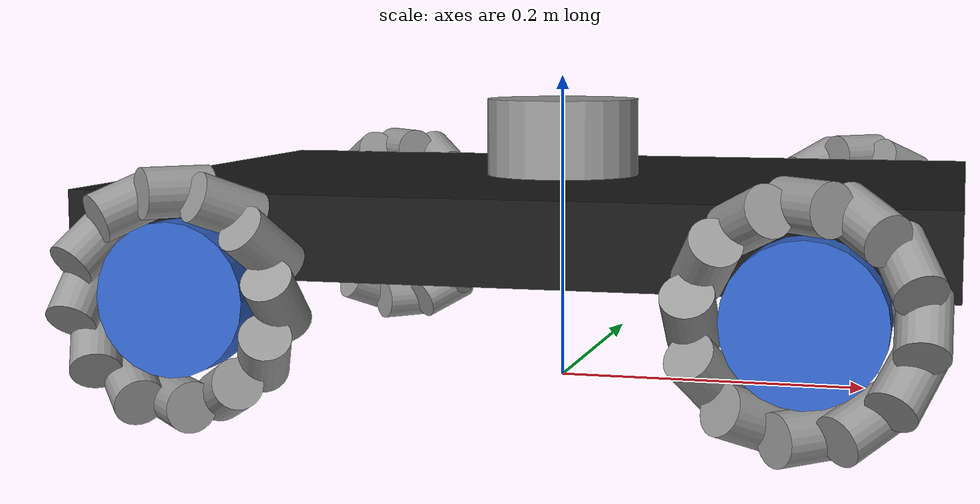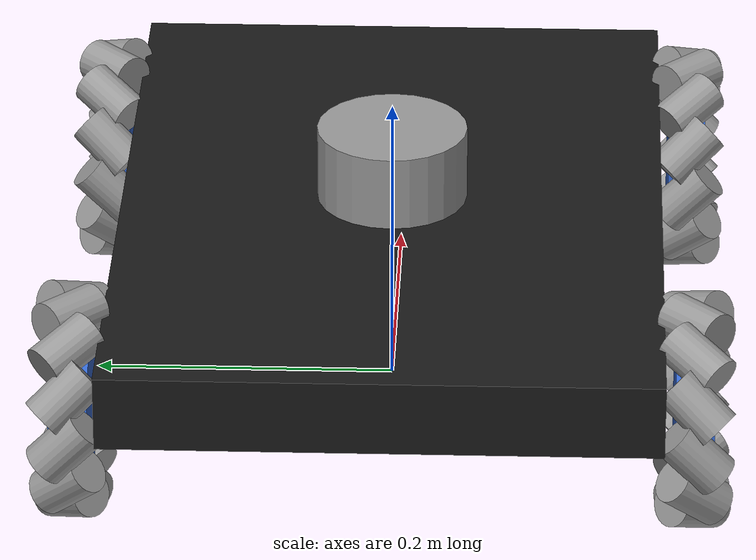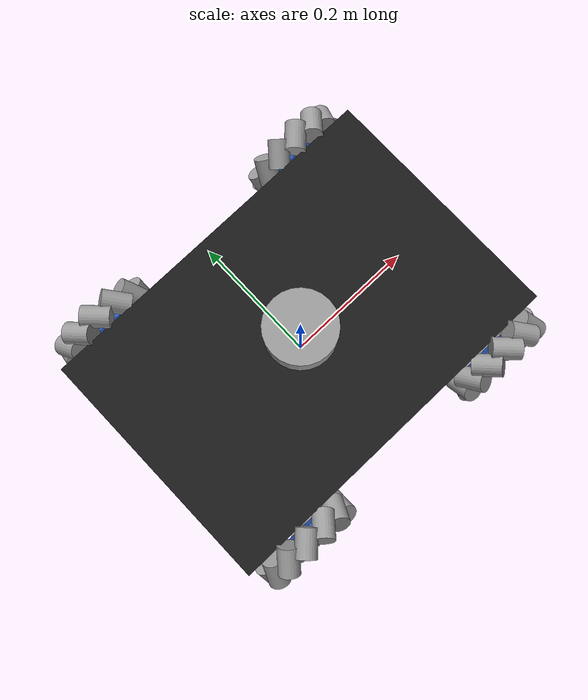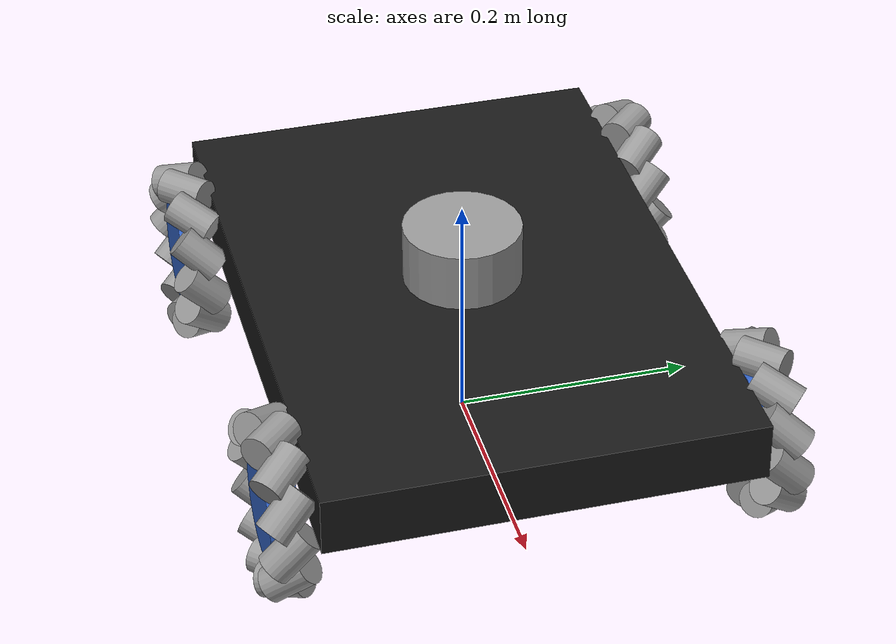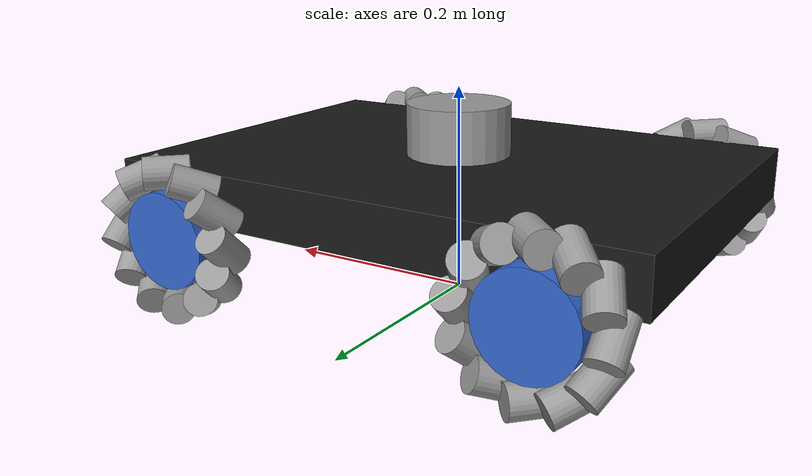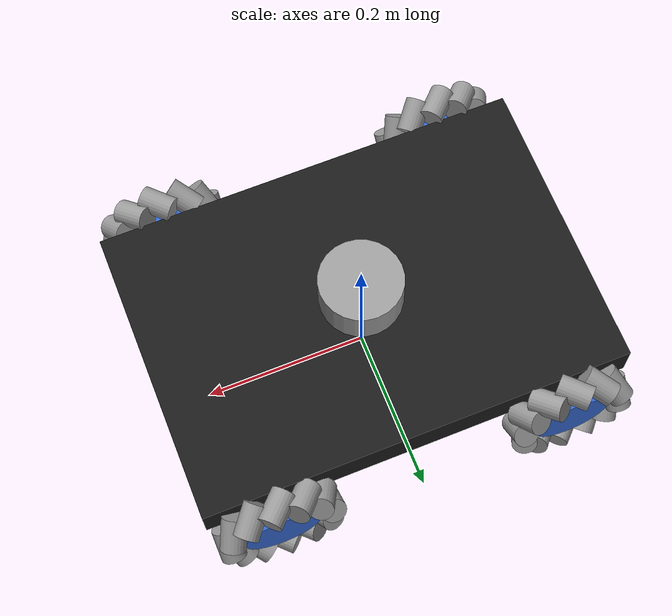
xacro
<?xml version="1.0"?>
<robot name="omove" xmlns:xacro="http://www.ros.org/wiki/xacro">
  <xacro:arg name="controllers_file" default="$(find omove_description)/config/mecanum_controllers.yaml"/>
  <xacro:arg name="wheel_control_mode" default="velocity"/>

  <!-- ============ 物理参数 ============ -->
  <xacro:property name="body_len" value="0.52"/>
  <xacro:property name="body_wid" value="0.36"/>
  <xacro:property name="body_hgt" value="0.05"/>
  <xacro:property name="wheel_r"  value="0.076"/>
  <xacro:property name="wheel_w"  value="0.04"/>
  <xacro:property name="wheel_base_x" value="0.18"/>
  <xacro:property name="wheel_track_y" value="0.20"/>
  <xacro:property name="chassis_z" value="0.11"/>

  <material name="black"><color rgba="0.1 0.1 0.1 1"/></material>
  <material name="blue"><color rgba="0.2 0.4 0.8 1"/></material>
  <material name="gray"><color rgba="0.6 0.6 0.6 1"/></material>

  <!-- base_footprint（Nav2要求的地面投影坐标系） -->
  <link name="base_footprint"/>
  <joint name="base_joint" type="fixed">
    <parent link="base_footprint"/>
    <child link="base_link"/>
    <origin xyz="0 0 ${chassis_z}" rpy="0 0 0"/>
  </joint>

  <!-- ============ base_link 底盘 ============ -->
  <link name="base_link">
    <visual>
      <geometry><box size="${body_len} ${body_wid} ${body_hgt}"/></geometry>
      <material name="black"/>
    </visual>
    <collision>
      <geometry><box size="${body_len} ${body_wid} ${body_hgt}"/></geometry>
    </collision>
    <inertial>
      <mass value="5.0"/>
      <inertia ixx="0.1" ixy="0" ixz="0" iyy="0.1" iyz="0" izz="0.2"/>
    </inertial>
  </link>

  <!-- Passive 45-degree rollers: handedness matches the X-layout kinematics. -->
  <xacro:macro name="roller" params="prefix index handedness">
    <xacro:property name="theta" value="${2*pi*index/12}"/>
    <joint name="${prefix}_roller_${index}_joint" type="continuous">
      <parent link="${prefix}_wheel"/>
      <child link="${prefix}_roller_${index}"/>
      <origin xyz="${0.061*cos(theta)} ${0.061*sin(theta)} 0"
              rpy="0 ${pi/4 if handedness > 0 else 3*pi/4} ${theta+pi/2}"/>
      <axis xyz="0 0 1"/>
      <dynamics damping="0.00001" friction="0.0"/>
    </joint>
    <link name="${prefix}_roller_${index}">
      <visual>
        <geometry><cylinder radius="0.015" length="0.04"/></geometry>
        <material name="gray"/>
      </visual>
      <collision>
        <geometry><cylinder radius="0.015" length="0.04"/></geometry>
      </collision>
      <inertial>
        <mass value="0.03"/>
        <inertia ixx="0.0000056875" ixy="0" ixz="0"
                 iyy="0.0000056875" iyz="0" izz="0.000003375"/>
      </inertial>
    </link>
    <gazebo reference="${prefix}_roller_${index}">
      <mu1>1.0</mu1><mu2>1.0</mu2>
      <kp>100000</kp><kd>10</kd>
      <minDepth>0.001</minDepth><maxVel>0.1</maxVel>
    </gazebo>
  </xacro:macro>

  <xacro:macro name="wheel" params="prefix x y handedness">
    <joint name="${prefix}_wheel_joint" type="continuous">
      <parent link="base_link"/>
      <child link="${prefix}_wheel"/>
      <origin xyz="${x} ${y} ${wheel_r - chassis_z}" rpy="${-pi/2} 0 0"/>
      <axis xyz="0 0 1"/>
    </joint>
    <link name="${prefix}_wheel">
      <visual>
        <geometry><cylinder radius="0.045" length="0.025"/></geometry>
        <material name="blue"/>
      </visual>
      <collision>
        <geometry><cylinder radius="0.045" length="0.025"/></geometry>
      </collision>
      <inertial>
        <mass value="0.14"/>
        <inertia ixx="0.0000781667" ixy="0" ixz="0"
                 iyy="0.0000781667" iyz="0" izz="0.00014175"/>
      </inertial>
    </link>
    <xacro:roller prefix="${prefix}" index="0" handedness="${handedness}"/>
    <xacro:roller prefix="${prefix}" index="1" handedness="${handedness}"/>
    <xacro:roller prefix="${prefix}" index="2" handedness="${handedness}"/>
    <xacro:roller prefix="${prefix}" index="3" handedness="${handedness}"/>
    <xacro:roller prefix="${prefix}" index="4" handedness="${handedness}"/>
    <xacro:roller prefix="${prefix}" index="5" handedness="${handedness}"/>
    <xacro:roller prefix="${prefix}" index="6" handedness="${handedness}"/>
    <xacro:roller prefix="${prefix}" index="7" handedness="${handedness}"/>
    <xacro:roller prefix="${prefix}" index="8" handedness="${handedness}"/>
    <xacro:roller prefix="${prefix}" index="9" handedness="${handedness}"/>
    <xacro:roller prefix="${prefix}" index="10" handedness="${handedness}"/>
    <xacro:roller prefix="${prefix}" index="11" handedness="${handedness}"/>
  </xacro:macro>

  <xacro:wheel prefix="front_left" x="${wheel_base_x}" y="${wheel_track_y}" handedness="1"/>
  <xacro:wheel prefix="front_right" x="${wheel_base_x}" y="${-wheel_track_y}" handedness="-1"/>
  <xacro:wheel prefix="rear_left" x="${-wheel_base_x}" y="${wheel_track_y}" handedness="-1"/>
  <xacro:wheel prefix="rear_right" x="${-wheel_base_x}" y="${-wheel_track_y}" handedness="1"/>

  <!-- ============ 虚拟激光雷达 ============ -->
  <link name="laser_link">
    <visual>
      <geometry><cylinder radius="0.05" length="0.05"/></geometry>
      <material name="gray"/>
    </visual>
    <collision>
      <geometry><cylinder radius="0.05" length="0.05"/></geometry>
    </collision>
  </link>
  <joint name="laser_joint" type="fixed">
    <parent link="base_link"/>
    <child link="laser_link"/>
    <origin xyz="0 0 0.05" rpy="0 0 0"/>
  </joint>

  <xacro:include filename="$(find omove_description)/urdf/gazebo.urdf.xacro"/>
    <!-- ============ ros2_control配置 ============ -->
  <!-- Passive joints expose feedback only; no motor command interfaces. -->
  <xacro:macro name="roller_feedback" params="prefix index">
    <joint name="${prefix}_roller_${index}_joint">
      <state_interface name="position"/>
      <state_interface name="velocity"/>
    </joint>
  </xacro:macro>
  <xacro:macro name="wheel_feedback" params="prefix">
    <xacro:roller_feedback prefix="${prefix}" index="0"/>
    <xacro:roller_feedback prefix="${prefix}" index="1"/>
    <xacro:roller_feedback prefix="${prefix}" index="2"/>
    <xacro:roller_feedback prefix="${prefix}" index="3"/>
    <xacro:roller_feedback prefix="${prefix}" index="4"/>
    <xacro:roller_feedback prefix="${prefix}" index="5"/>
    <xacro:roller_feedback prefix="${prefix}" index="6"/>
    <xacro:roller_feedback prefix="${prefix}" index="7"/>
    <xacro:roller_feedback prefix="${prefix}" index="8"/>
    <xacro:roller_feedback prefix="${prefix}" index="9"/>
    <xacro:roller_feedback prefix="${prefix}" index="10"/>
    <xacro:roller_feedback prefix="${prefix}" index="11"/>
  </xacro:macro>
  <ros2_control name="OmoveSystem" type="system">
    <hardware>
      <plugin>gazebo_ros2_control/GazeboSystem</plugin>
    </hardware>
    <joint name="front_left_wheel_joint">
      <command_interface name="$(arg wheel_control_mode)"/>
      <param name="vel_kp">0.5</param><param name="vel_ki">0.5</param><param name="vel_kd">0.0</param>
      <param name="vel_max_integral_error">2.0</param><param name="vel_min_integral_error">-2.0</param>
      <state_interface name="position"/>
      <state_interface name="velocity"/>
    </joint>
    <joint name="front_right_wheel_joint">
      <command_interface name="$(arg wheel_control_mode)"/>
      <param name="vel_kp">0.5</param><param name="vel_ki">0.5</param><param name="vel_kd">0.0</param>
      <param name="vel_max_integral_error">2.0</param><param name="vel_min_integral_error">-2.0</param>
      <state_interface name="position"/>
      <state_interface name="velocity"/>
    </joint>
    <joint name="rear_left_wheel_joint">
      <command_interface name="$(arg wheel_control_mode)"/>
      <param name="vel_kp">0.5</param><param name="vel_ki">0.5</param><param name="vel_kd">0.0</param>
      <param name="vel_max_integral_error">2.0</param><param name="vel_min_integral_error">-2.0</param>
      <state_interface name="position"/>
      <state_interface name="velocity"/>
    </joint>
    <joint name="rear_right_wheel_joint">
      <command_interface name="$(arg wheel_control_mode)"/>
      <param name="vel_kp">0.5</param><param name="vel_ki">0.5</param><param name="vel_kd">0.0</param>
      <param name="vel_max_integral_error">2.0</param><param name="vel_min_integral_error">-2.0</param>
      <state_interface name="position"/>
      <state_interface name="velocity"/>
    </joint>
    <xacro:wheel_feedback prefix="front_left"/>
    <xacro:wheel_feedback prefix="front_right"/>
    <xacro:wheel_feedback prefix="rear_left"/>
    <xacro:wheel_feedback prefix="rear_right"/>
  </ros2_control>

</robot>
